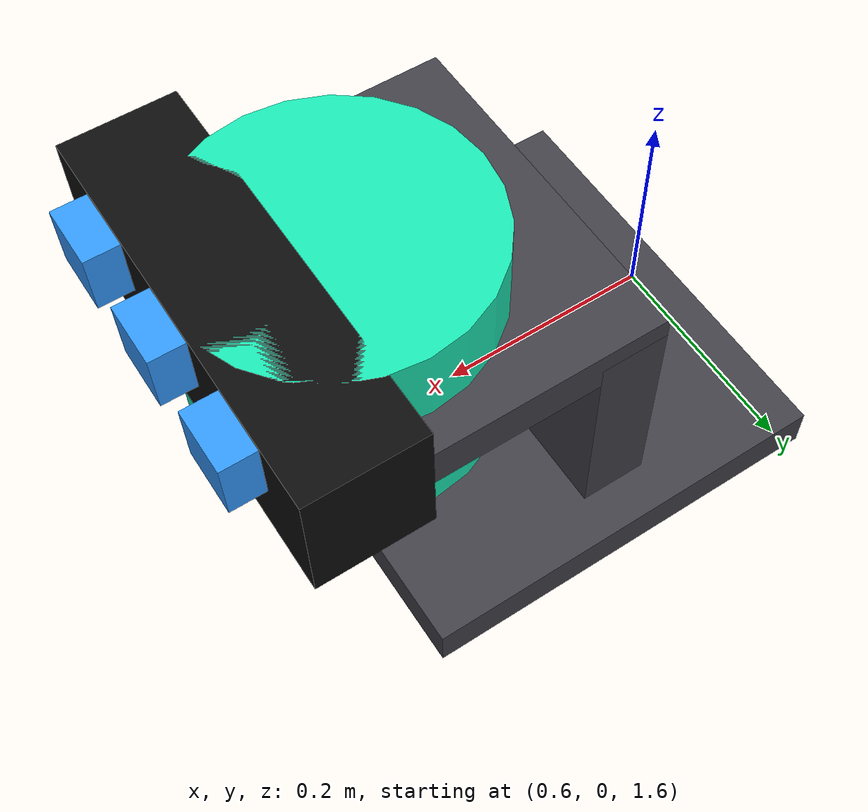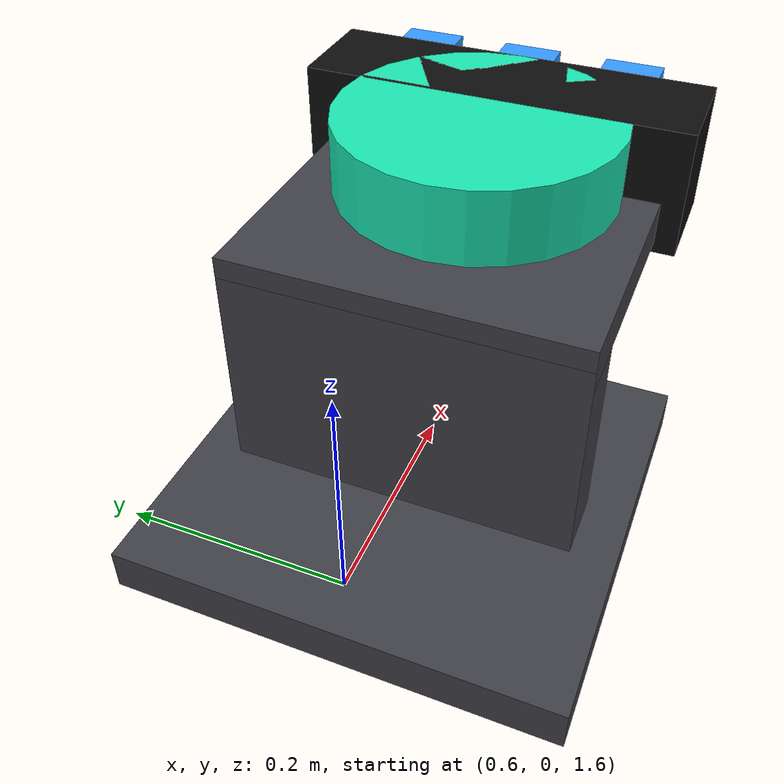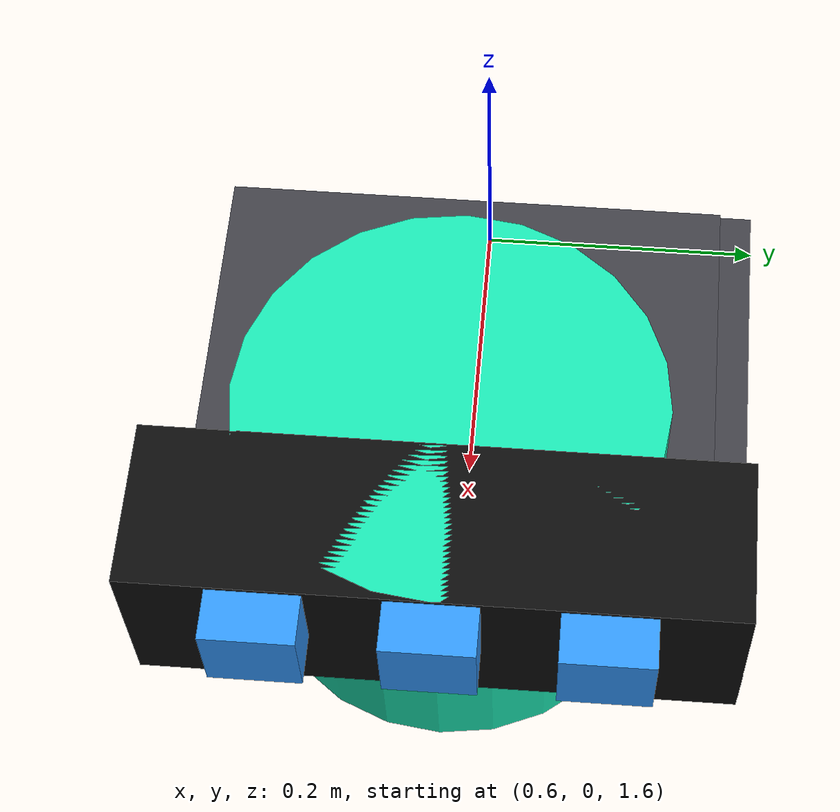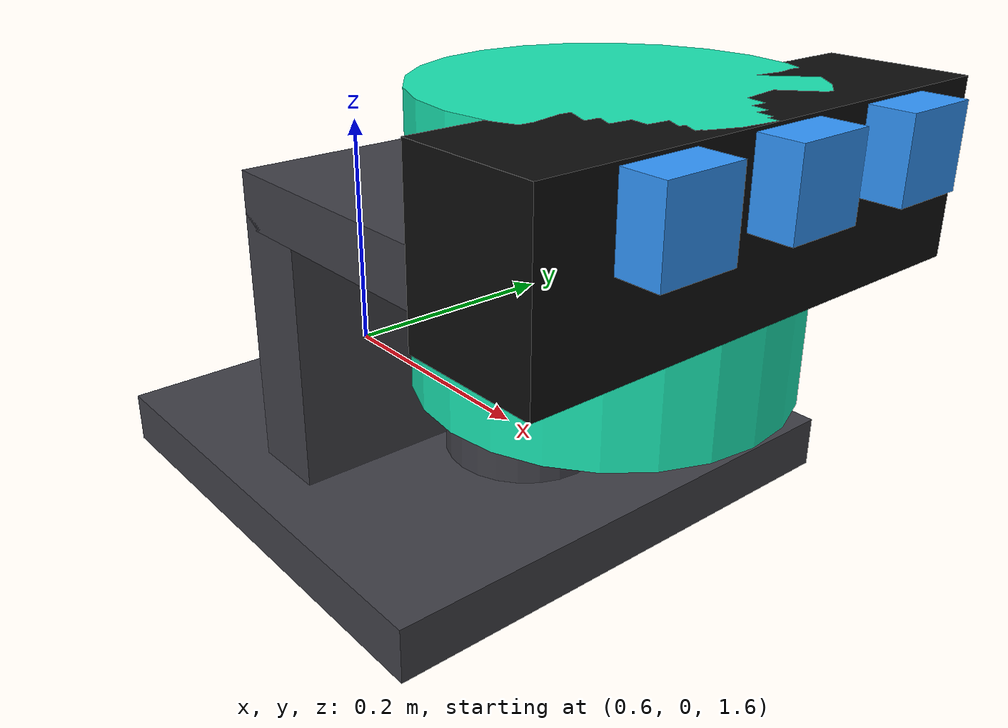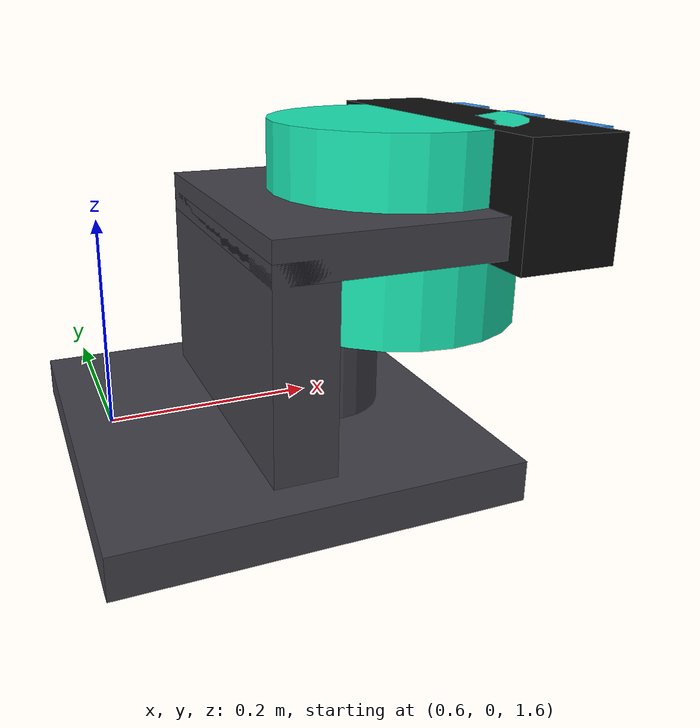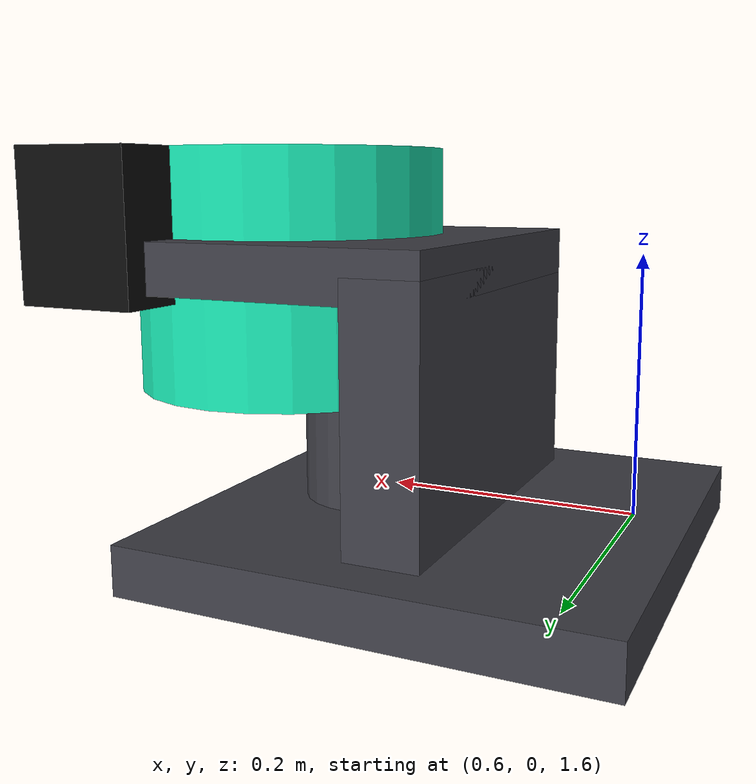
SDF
<?xml version="1.0"?>
<sdf version="1.9">
  <!-- 以车辆中心为原点，x 前、y 左、z 上；话题使用 Gazebo 自动模型作用域。 -->
  <model name="perception_rig">
    <static>true</static>
    <link name="sensor_mount">
      <!-- 车顶 z=1.55；底板、支柱与机身相接，不悬空。 -->
      <visual name="mounting_plate">
        <pose>0.75 0 1.57 0 0 0</pose>
        <geometry><box><size>0.38 0.40 0.04</size></box></geometry>
        <material><ambient>0.25 0.25 0.28 1</ambient><diffuse>0.25 0.25 0.28 1</diffuse></material>
      </visual>
      <visual name="lidar_pedestal">
        <pose>0.82 0 1.64 0 0 0</pose>
        <geometry><cylinder><radius>0.06</radius><length>0.18</length></cylinder></geometry>
        <material><ambient>0.25 0.25 0.28 1</ambient><diffuse>0.25 0.25 0.28 1</diffuse></material>
      </visual>
      <visual name="lidar_housing">
        <pose>0.90 0 1.78 0 0 0</pose>
        <geometry><cylinder><radius>0.13</radius><length>0.2</length></cylinder></geometry>
        <material><ambient>0.1 0.9 0.7 1</ambient><diffuse>0.1 0.9 0.7 1</diffuse></material>
      </visual>
      <visual name="camera_pedestal">
        <pose>0.74 0 1.67 0 0 0</pose>
        <geometry><box><size>0.06 0.32 0.24</size></box></geometry>
        <material><ambient>0.25 0.25 0.28 1</ambient><diffuse>0.25 0.25 0.28 1</diffuse></material>
      </visual>
      <visual name="camera_arm">
        <pose>0.86 0 1.79 0 0 0</pose>
        <geometry><box><size>0.30 0.32 0.04</size></box></geometry>
        <material><ambient>0.25 0.25 0.28 1</ambient><diffuse>0.25 0.25 0.28 1</diffuse></material>
      </visual>
      <visual name="camera_housing">
        <pose>0.98 0 1.82 0 0 0</pose>
        <geometry><box><size>0.1 0.36 0.12</size></box></geometry>
        <material><ambient>0.05 0.05 0.05 1</ambient><diffuse>0.05 0.05 0.05 1</diffuse></material>
      </visual>
      <visual name="wide_lens">
        <pose>1.04 0.10 1.85 0 0 0</pose>
        <geometry><box><size>0.04 0.055 0.055</size></box></geometry>
        <material><ambient>0.2 0.6 1 1</ambient><diffuse>0.2 0.6 1 1</diffuse></material>
      </visual>
      <visual name="standard_lens">
        <pose>1.04 0 1.85 0 0 0</pose>
        <geometry><box><size>0.04 0.055 0.055</size></box></geometry>
        <material><ambient>0.2 0.6 1 1</ambient><diffuse>0.2 0.6 1 1</diffuse></material>
      </visual>
      <visual name="tele_lens">
        <pose>1.04 -0.10 1.85 0 0 0</pose>
        <geometry><box><size>0.04 0.055 0.055</size></box></geometry>
        <material><ambient>0.2 0.6 1 1</ambient><diffuse>0.2 0.6 1 1</diffuse></material>
      </visual>
      <sensor name="lidar" type="gpu_lidar">
        <pose>0.90 0 1.85 0 0 0</pose>
        <always_on>true</always_on><update_rate>10</update_rate>
        <lidar>
          <scan>
            <horizontal><samples>720</samples><resolution>1</resolution><min_angle>-1.0471975512</min_angle><max_angle>1.0471975512</max_angle></horizontal>
            <vertical><samples>64</samples><resolution>1</resolution><min_angle>-0.4363323130</min_angle><max_angle>0.2617993878</max_angle></vertical>
          </scan>
          <range><min>0.3</min><max>100</max><resolution>0.01</resolution></range>
        </lidar>
      </sensor>
      <!-- 车顶前缘 x=0.95、顶面 z=1.55；镜头略向前伸且高于顶面。 -->
      <sensor name="wide" type="camera">
        <pose>1.05 0.10 1.85 0 0.1745329252 0</pose>
        <always_on>true</always_on><update_rate>15</update_rate>
        <camera><horizontal_fov>2.3561944902</horizontal_fov><image><width>640</width><height>360</height><format>R8G8B8</format></image><clip><near>0.05</near><far>150</far></clip></camera>
      </sensor>
      <sensor name="standard" type="camera">
        <pose>1.05 0 1.85 0 0.0872664626 0</pose>
        <always_on>true</always_on><update_rate>15</update_rate>
        <camera><horizontal_fov>1.0471975512</horizontal_fov><image><width>640</width><height>360</height><format>R8G8B8</format></image><clip><near>0.05</near><far>150</far></clip></camera>
      </sensor>
      <sensor name="tele" type="camera">
        <pose>1.05 -0.10 1.85 0 0 0</pose>
        <always_on>true</always_on><update_rate>15</update_rate>
        <camera><horizontal_fov>0.3490658504</horizontal_fov><image><width>640</width><height>360</height><format>R8G8B8</format></image><clip><near>0.05</near><far>300</far></clip></camera>
      </sensor>
    </link>
  </model>
</sdf>
